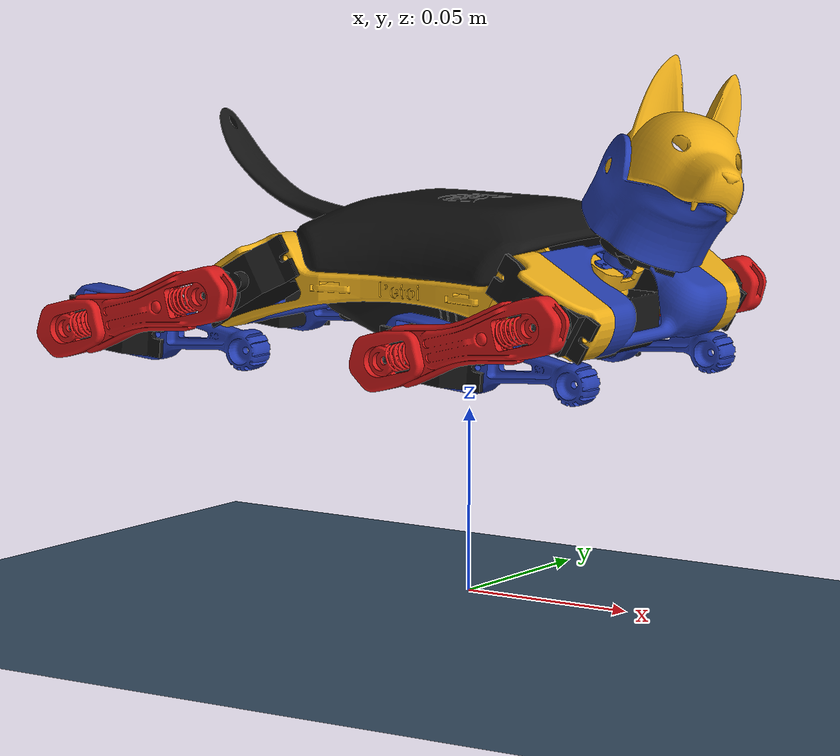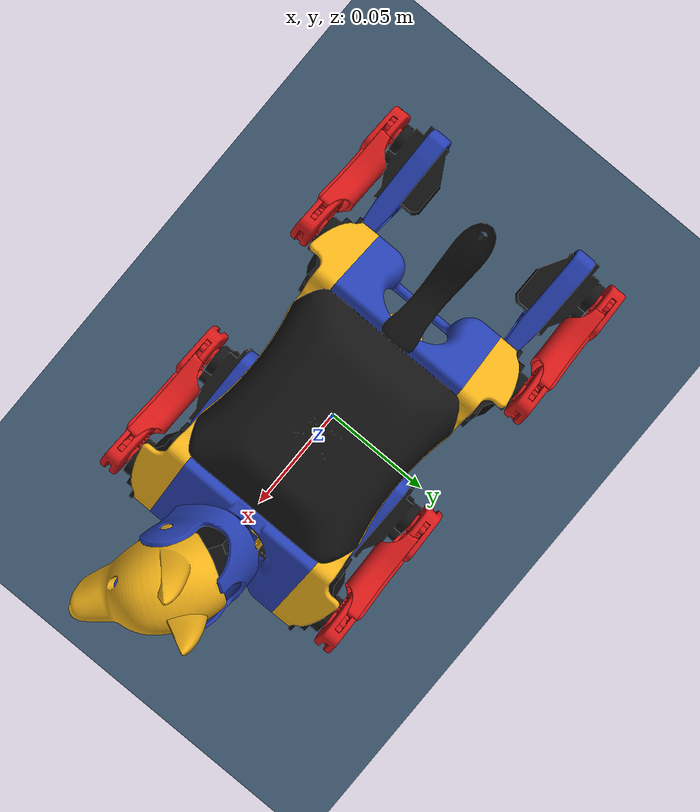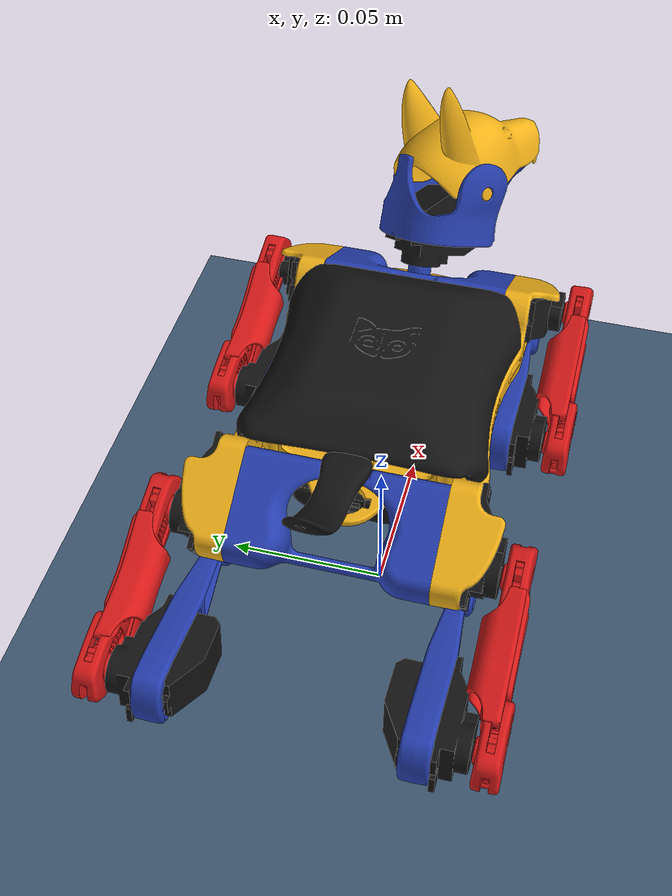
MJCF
<!-- MH-FLOCKE Scene: Petoi Bittle X -->
<mujoco model="bittle_scene">
  <include file="bittle.xml"/>

  <visual>
    <headlight diffuse="0.6 0.6 0.6" ambient="0.3 0.3 0.3" specular="0 0 0"/>
    <rgba haze="0.15 0.25 0.35 1"/>
    <global azimuth="120" elevation="-20"/>
  </visual>

  <statistic center="0 0 0.05" extent="0.3"/>
</mujoco>

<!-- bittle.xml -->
<mujoco model="bittle">
  <compiler angle="radian" meshdir="meshes_obj" autolimits="true" inertiafromgeom="false"/>

  <option timestep="0.002" gravity="0 0 -9.81" integrator="implicitfast" cone="elliptic"/>

  <default>
    <joint limited="true" damping="1.5" armature="0.01" frictionloss="0.15"/>
    <default class="visual">
      <geom contype="0" conaffinity="0" group="0" density="1"/>
    </default>
    <default class="collision">
      <geom condim="3" contype="1" conaffinity="15" friction="0.9 0.02 0.01" group="1" rgba="0.5 0.5 0.5 0.5"/>
    </default>
    <position ctrllimited="true" ctrlrange="-1.57 1.57" kp="40.0"/>
    <mesh scale="0.001 0.001 0.001"/>
  </default>

  <asset>
    <mesh name="base_link" file="base_link.obj"/>
    <mesh name="front__1" file="front__1.obj"/>
    <mesh name="rear__1" file="rear__1.obj"/>
    <mesh name="servo_rfs_1" file="servo_rfs_1.obj"/>
    <mesh name="servo_rrs__1" file="servo_rrs__1.obj"/>
    <mesh name="servo_lfs_1" file="servo_lfs_1.obj"/>
    <mesh name="servo_lrs__1" file="servo_lrs__1.obj"/>
    <mesh name="c_neck__1" file="c_neck__1.obj"/>
    <mesh name="servo_neck__1" file="servo_neck__1.obj"/>
    <mesh name="head__1" file="head__1.obj"/>
    <mesh name="jaw_1" file="jaw_1.obj"/>
    <mesh name="c_thrf__1" file="c_thrf__1.obj"/>
    <mesh name="th_rf_1" file="th_rf_1.obj"/>
    <mesh name="tho_rf__1" file="tho_rf__1.obj"/>
    <mesh name="tube__1" file="tube__1.obj"/>
    <mesh name="c_thorf_1" file="c_thorf_1.obj"/>
    <mesh name="servos_rf_1" file="servos_rf_1.obj"/>
    <mesh name="shank_rf_1" file="shank_rf_1.obj"/>
    <mesh name="c_thrr_1" file="c_thrr_1.obj"/>
    <mesh name="th_rr_1" file="th_rr_1.obj"/>
    <mesh name="tho_rr_1" file="tho_rr_1.obj"/>
    <mesh name="tube_rr_1" file="tube_rr_1.obj"/>
    <mesh name="c_thorr_1" file="c_thorr_1.obj"/>
    <mesh name="servos_rr_1" file="servos_rr_1.obj"/>
    <mesh name="shank_rr_1" file="shank_rr_1.obj"/>
    <mesh name="c_thlf_1" file="c_thlf_1.obj"/>
    <mesh name="th_lf_1" file="th_lf_1.obj"/>
    <mesh name="tho_lf_1" file="tho_lf_1.obj"/>
    <mesh name="tube_lf_1" file="tube_lf_1.obj"/>
    <mesh name="c_tholf_1" file="c_tholf_1.obj"/>
    <mesh name="servos_lf_1" file="servos_lf_1.obj"/>
    <mesh name="shank_lf_1" file="shank_lf_1.obj"/>
    <mesh name="c_thlr_1" file="c_thlr_1.obj"/>
    <mesh name="th_lr__1" file="th_lr__1.obj"/>
    <mesh name="tho_lr_1" file="tho_lr_1.obj"/>
    <mesh name="tube_lr_1" file="tube_lr_1.obj"/>
    <mesh name="c_tholr__1" file="c_tholr__1.obj"/>
    <mesh name="servos_lr_1" file="servos_lr_1.obj"/>
    <mesh name="shank_lr_1" file="shank_lr_1.obj"/>
    <mesh name="cover_1" file="cover_1.obj"/>
    <mesh name="battery_1" file="battery_1.obj"/>

    <!-- Materials: Yellow frame, Blue thighs+shanks, Red knee connectors, Black servos+cover -->
    <material name="bittle_yellow" rgba="0.95 0.7 0.1 1"/>
    <material name="body_dark" rgba="0.08 0.08 0.08 1"/>
    <material name="head_yellow" rgba="0.95 0.7 0.1 1"/>
    <material name="bittle_blue" rgba="0.15 0.25 0.7 1"/>
    <material name="bittle_red" rgba="0.85 0.1 0.1 1"/>
    <material name="bittle_black" rgba="0.08 0.08 0.08 1"/>
    <material name="foot_red" rgba="0.8 0.15 0.1 1"/>
    <texture name="grid" type="2d" builtin="checker" width="512" height="512"
             rgb1="0.2 0.3 0.4" rgb2="0.3 0.4 0.5"/>
    <material name="grid" texture="grid" texrepeat="8 8" reflectance="0.2"/>
  </asset>

  <worldbody>
    <geom name="floor" type="plane" size="0 0 0.1" pos="0 0 -0.01" material="grid" contype="1" conaffinity="1"/>
    <light pos="0 0 1.5" dir="0 0 -1" diffuse="0.8 0.8 0.8" specular="0.3 0.3 0.3"/>
    <light pos="0.5 0.5 1.0" dir="-0.5 -0.5 -1" diffuse="0.4 0.4 0.4"/>

    <body name="torso" pos="0 0 0.06">
      <freejoint name="root"/>
      <inertial pos="0.00065 -0.00002 0.02651" mass="0.077" diaginertia="0.000082 0.000161 0.000200"/>
      <site name="imu_site" pos="0 0 0" size="0.001" rgba="0 0 0 0"/>

      <!-- Torso visuals -->
      <geom type="mesh" mesh="base_link" class="visual" material="bittle_yellow"/>
      <geom type="mesh" mesh="base_link" class="collision"/>
      <body name="front__1" pos="0.061733 -0.028 0.025792">
        <inertial pos="0 0 0" mass="1e-6" diaginertia="1e-9 1e-9 1e-9"/>
        <geom pos="-0.061733 0.028 -0.025792" type="mesh" mesh="front__1" class="visual" material="bittle_blue"/>
        <geom pos="-0.061733 0.028 -0.025792" type="mesh" mesh="front__1" class="collision"/>
      </body>
      <body name="rear__1" pos="-0.061733 0.028 0.025792">
        <inertial pos="0 0 0" mass="1e-6" diaginertia="1e-9 1e-9 1e-9"/>
        <geom pos="0.061733 -0.028 -0.025792" type="mesh" mesh="rear__1" class="visual" material="bittle_blue"/>
        <geom pos="0.061733 -0.028 -0.025792" type="mesh" mesh="rear__1" class="collision"/>
      </body>
      <body name="cover_1" pos="0 -0.031 0.030939">
        <inertial pos="0 0 0" mass="1e-6" diaginertia="1e-9 1e-9 1e-9"/>
        <geom pos="0 0.031 -0.030939" type="mesh" mesh="cover_1" class="visual" material="body_dark"/>
        <geom pos="0 0.031 -0.030939" type="mesh" mesh="cover_1" class="collision"/>
      </body>
      <body name="battery_1" pos="-0.01725 0 0.023892">
        <inertial pos="0 0 -0.047784" mass="0.055" diaginertia="5.2e-6 2.3e-5 2.7e-5"/>
        <geom pos="0.01725 0 -0.023892" type="mesh" mesh="battery_1" class="visual" material="body_dark"/>
        <geom pos="0.01725 0 -0.023892" type="mesh" mesh="battery_1" class="collision"/>
      </body>

      <!-- HEAD with neck joint -->
      <body name="c_neck__1" pos="0.044904 0 0.031351">
        <inertial pos="0 0 0" mass="1e-6" diaginertia="1e-9 1e-9 1e-9"/>
        <geom pos="-0.044904 0 -0.031351" type="mesh" mesh="c_neck__1" class="visual" material="bittle_blue"/>
        <body name="servo_neck__1" pos="0.00265 0 0.00459">
          <joint name="neck_joint" pos="0 0 0" axis="-0.5 0 -0.866025" limited="true" range="-0.5 0.5"/>
          <inertial pos="0.06596 -0.00537 0.05490" mass="0.0187" diaginertia="8.3e-6 1.1e-5 7.7e-6"/>
          <geom pos="-0.047554 0 -0.035941" type="mesh" mesh="servo_neck__1" class="visual" material="bittle_black"/>
          <body name="jaw_1" pos="0.016896 -0.012925 -0.001914">
            <inertial pos="0 0 0" mass="1e-6" diaginertia="1e-9 1e-9 1e-9"/>
            <geom pos="-0.06445 0.012925 -0.034027" type="mesh" mesh="jaw_1" class="visual" material="bittle_blue"/>
            <body name="head__1" pos="-0.008739 -0.00423 0.0263">
              <inertial pos="0 0 0" mass="1e-6" diaginertia="1e-9 1e-9 1e-9"/>
              <geom pos="-0.055711 0.017155 -0.060327" type="mesh" mesh="head__1" class="visual" material="head_yellow"/>
            </body>
          </body>
        </body>
      </body>

      <!-- ========== RIGHT FRONT LEG ========== -->
      <body name="servo_rfs_1" pos="0.059645 -0.036 0.017875">
        <inertial pos="0 0 0" mass="0.0107" diaginertia="9e-7 1.2e-6 6e-7"/>
        <geom pos="-0.059645 0.036 -0.017875" type="mesh" mesh="servo_rfs_1" class="visual" material="bittle_black"/>
        <body name="c_thrf__1" pos="-0.007145 -0.0125 0.004125">
          <joint name="shrfs_joint" pos="0 0 0" axis="0 1 0" range="-1.5708 1.6"/>
          <inertial pos="-0.02 0 -0.01" mass="0.006" diaginertia="0.0000011 0.0000022 0.0000022"/>
          <geom pos="-0.0525 0.0485 -0.022" type="mesh" mesh="c_thrf__1" class="visual" material="bittle_red"/>
          <geom pos="-0.0525 0.0485 -0.022" type="mesh" mesh="c_thrf__1" class="collision"/>
          <body name="th_rf_1" pos="0 -0.0023 0">
            <inertial pos="0 0 0" mass="1e-6" diaginertia="1e-9 1e-9 1e-9"/>
            <geom pos="-0.0525 0.0508 -0.022" type="mesh" mesh="th_rf_1" class="visual" material="bittle_red"/>
            <body name="tho_rf__1" pos="-0.013523 0.000445 -0.003623">
              <inertial pos="0 0 0" mass="1e-6" diaginertia="1e-9 1e-9 1e-9"/>
              <geom pos="-0.038977 0.050355 -0.018377" type="mesh" mesh="tho_rf__1" class="visual" material="bittle_red"/>
              <body name="c_thorf_1" pos="-0.03091 -0.004582 -0.008283">
                <inertial pos="0 0 0" mass="1e-6" diaginertia="1e-9 1e-9 1e-9"/>
                <geom pos="-0.008067 0.054937 -0.010094" type="mesh" mesh="c_thorf_1" class="visual" material="bittle_red"/>
                <body name="servos_rf_1" pos="0 0.007857 0">
                  <joint name="shrft_joint" pos="0 0 0" axis="0 1 0" range="-1.22173 1.5708"/>
                  <inertial pos="-0.004 0.02 -0.005" mass="0.0107" diaginertia="9e-7 1.2e-6 6e-7"/>
                  <geom pos="-0.008067 0.04708 -0.010094" type="mesh" mesh="servos_rf_1" class="visual" material="bittle_black"/>
                  <geom pos="-0.008067 0.04708 -0.010094" type="mesh" mesh="servos_rf_1" class="collision"/>
                  <site name="rf_foot_site" pos="0.01869 0.00000 -0.02242" type="sphere" size="0.001" rgba="0 0 0 0"/>
                  <body name="shank_rf_1" pos="-0.008218 0.0075 0.000719">
                    <inertial pos="0 0 0" mass="0.0033" diaginertia="1.2e-6 1.4e-8 1.2e-6"/>
                    <geom pos="0.000151 0.03958 -0.010813" type="mesh" mesh="shank_rf_1" class="visual" material="bittle_blue"/>
                    <geom pos="0.000151 0.03958 -0.010813" type="mesh" mesh="shank_rf_1" class="collision"/>
                  </body>
                </body>
              </body>
            </body>
            <body name="tube__1" pos="-0.02335 -0.001807 -0.00172">
              <inertial pos="0 0 0" mass="1e-6" diaginertia="1e-9 1e-9 1e-9"/>
              <geom pos="-0.02915 0.052607 -0.02028" type="mesh" mesh="tube__1" class="visual" material="bittle_red"/>
            </body>
          </body>
        </body>
      </body>

      <!-- ========== RIGHT REAR LEG ========== -->
      <body name="servo_rrs__1" pos="-0.059645 -0.036 0.017875">
        <inertial pos="0 0 0" mass="0.0107" diaginertia="9e-7 1.2e-6 6e-7"/>
        <geom pos="0.059645 0.036 -0.017875" type="mesh" mesh="servo_rrs__1" class="visual" material="bittle_black"/>
        <body name="c_thrr_1" pos="0.007145 -0.0125 0.004125">
          <joint name="shrrs_joint" pos="0 0 0" axis="0 -1 0" range="-1.5708 1.6"/>
          <inertial pos="0.02 0 -0.01" mass="0.006" diaginertia="0.0000011 0.0000022 0.0000022"/>
          <geom pos="0.0525 0.0485 -0.022" type="mesh" mesh="c_thrr_1" class="visual" material="bittle_red"/>
          <geom pos="0.0525 0.0485 -0.022" type="mesh" mesh="c_thrr_1" class="collision"/>
          <body name="th_rr_1" pos="0 -0.0023 0">
            <inertial pos="0 0 0" mass="1e-6" diaginertia="1e-9 1e-9 1e-9"/>
            <geom pos="0.0525 0.0508 -0.022" type="mesh" mesh="th_rr_1" class="visual" material="bittle_red"/>
            <body name="tho_rr_1" pos="-0.013523 0.000445 -0.003623">
              <inertial pos="0 0 0" mass="1e-6" diaginertia="1e-9 1e-9 1e-9"/>
              <geom pos="0.066023 0.050355 -0.018377" type="mesh" mesh="tho_rr_1" class="visual" material="bittle_red"/>
              <body name="c_thorr_1" pos="-0.03091 -0.004582 -0.008283">
                <inertial pos="0 0 0" mass="1e-6" diaginertia="1e-9 1e-9 1e-9"/>
                <geom pos="0.096933 0.054937 -0.010094" type="mesh" mesh="c_thorr_1" class="visual" material="bittle_red"/>
                <body name="servos_rr_1" pos="0 0.007857 0">
                  <joint name="shrrt_joint" pos="0 0 0" axis="0 1 0" range="-1.22173 1.5708"/>
                  <inertial pos="0.05 0.02 -0.005" mass="0.0107" diaginertia="9e-7 1.2e-6 6e-7"/>
                  <geom pos="0.096933 0.04708 -0.010094" type="mesh" mesh="servos_rr_1" class="visual" material="bittle_black"/>
                  <geom pos="0.096933 0.04708 -0.010094" type="mesh" mesh="servos_rr_1" class="collision"/>
                  <site name="rr_foot_site" pos="0.01854 0.00000 -0.02223" type="sphere" size="0.001" rgba="0 0 0 0"/>
                  <body name="shank_rr_1" pos="-0.008218 0.0075 0.000719">
                    <inertial pos="0 0 0" mass="0.0033" diaginertia="1.2e-6 1.4e-8 1.2e-6"/>
                    <geom pos="0.105151 0.03958 -0.010813" type="mesh" mesh="shank_rr_1" class="visual" material="bittle_blue"/>
                    <geom pos="0.105151 0.03958 -0.010813" type="mesh" mesh="shank_rr_1" class="collision"/>
                  </body>
                </body>
              </body>
            </body>
            <body name="tube_rr_1" pos="-0.02335 -0.001807 -0.00172">
              <inertial pos="0 0 0" mass="1e-6" diaginertia="1e-9 1e-9 1e-9"/>
              <geom pos="0.07585 0.052607 -0.02028" type="mesh" mesh="tube_rr_1" class="visual" material="bittle_red"/>
            </body>
          </body>
        </body>
      </body>

      <!-- ========== LEFT FRONT LEG ========== -->
      <body name="servo_lfs_1" pos="0.059645 0.036 0.017875">
        <inertial pos="0 0 0" mass="0.0107" diaginertia="9e-7 1.2e-6 6e-7"/>
        <geom pos="-0.059645 -0.036 -0.017875" type="mesh" mesh="servo_lfs_1" class="visual" material="bittle_black"/>
        <body name="c_thlf_1" pos="-0.007145 0.0125 0.004125">
          <joint name="shlfs_joint" pos="0 0 0" axis="0 1 0" range="-1.5708 1.6"/>
          <inertial pos="-0.02 0 -0.01" mass="0.006" diaginertia="0.0000011 0.0000022 0.0000022"/>
          <geom pos="-0.0525 -0.0485 -0.022" type="mesh" mesh="c_thlf_1" class="visual" material="bittle_red"/>
          <geom pos="-0.0525 -0.0485 -0.022" type="mesh" mesh="c_thlf_1" class="collision"/>
          <body name="th_lf_1" pos="0 0.0023 0">
            <inertial pos="0 0 0" mass="1e-6" diaginertia="1e-9 1e-9 1e-9"/>
            <geom pos="-0.0525 -0.0508 -0.022" type="mesh" mesh="th_lf_1" class="visual" material="bittle_red"/>
            <body name="tho_lf_1" pos="-0.013523 -0.000445 -0.003623">
              <inertial pos="0 0 0" mass="1e-6" diaginertia="1e-9 1e-9 1e-9"/>
              <geom pos="-0.038977 -0.050355 -0.018377" type="mesh" mesh="tho_lf_1" class="visual" material="bittle_red"/>
              <body name="c_tholf_1" pos="-0.03091 0.004582 -0.008283">
                <inertial pos="0 0 0" mass="1e-6" diaginertia="1e-9 1e-9 1e-9"/>
                <geom pos="-0.008067 -0.054937 -0.010094" type="mesh" mesh="c_tholf_1" class="visual" material="bittle_red"/>
                <body name="servos_lf_1" pos="0 -0.007857 0">
                  <joint name="shlft_joint" pos="0 0 0" axis="0 1 0" range="-1.22173 1.5708"/>
                  <inertial pos="-0.004 -0.02 -0.005" mass="0.0107" diaginertia="9e-7 1.2e-6 6e-7"/>
                  <geom pos="-0.008067 -0.04708 -0.010094" type="mesh" mesh="servos_lf_1" class="visual" material="bittle_black"/>
                  <geom pos="-0.008067 -0.04708 -0.010094" type="mesh" mesh="servos_lf_1" class="collision"/>
                  <site name="lf_foot_site" pos="0.01868 0.00000 -0.02241" type="sphere" size="0.001" rgba="0 0 0 0"/>
                  <body name="shank_lf_1" pos="-0.008218 -0.007498 0.000719">
                    <inertial pos="0 0 0" mass="0.0033" diaginertia="1.2e-6 1.4e-8 1.2e-6"/>
                    <geom pos="0.000151 -0.039582 -0.010813" type="mesh" mesh="shank_lf_1" class="visual" material="bittle_blue"/>
                    <geom pos="0.000151 -0.039582 -0.010813" type="mesh" mesh="shank_lf_1" class="collision"/>
                  </body>
                </body>
              </body>
            </body>
            <body name="tube_lf_1" pos="-0.02335 0.001807 -0.00172">
              <inertial pos="0 0 0" mass="1e-6" diaginertia="1e-9 1e-9 1e-9"/>
              <geom pos="-0.02915 -0.052607 -0.02028" type="mesh" mesh="tube_lf_1" class="visual" material="bittle_red"/>
            </body>
          </body>
        </body>
      </body>

      <!-- ========== LEFT REAR LEG ========== -->
      <body name="servo_lrs__1" pos="-0.059645 0.036 0.017875">
        <inertial pos="0 0 0" mass="0.0107" diaginertia="9e-7 1.2e-6 6e-7"/>
        <geom pos="0.059645 -0.036 -0.017875" type="mesh" mesh="servo_lrs__1" class="visual" material="bittle_black"/>
        <body name="c_thlr_1" pos="0.007145 0.0125 0.004125">
          <joint name="shlrs_joint" pos="0 0 0" axis="0 -1 0" range="-1.5708 1.6"/>
          <inertial pos="0.02 0 -0.01" mass="0.006" diaginertia="0.0000011 0.0000022 0.0000022"/>
          <geom pos="0.0525 -0.0485 -0.022" type="mesh" mesh="c_thlr_1" class="visual" material="bittle_red"/>
          <geom pos="0.0525 -0.0485 -0.022" type="mesh" mesh="c_thlr_1" class="collision"/>
          <body name="th_lr__1" pos="0 0.002302 0">
            <inertial pos="0 0 0" mass="1e-6" diaginertia="1e-9 1e-9 1e-9"/>
            <geom pos="0.0525 -0.050802 -0.022" type="mesh" mesh="th_lr__1" class="visual" material="bittle_red"/>
            <body name="tho_lr_1" pos="-0.013523 -0.000445 -0.003623">
              <inertial pos="0 0 0" mass="1e-6" diaginertia="1e-9 1e-9 1e-9"/>
              <geom pos="0.066023 -0.050357 -0.018377" type="mesh" mesh="tho_lr_1" class="visual" material="bittle_red"/>
              <body name="c_tholr__1" pos="-0.03091 0.004582 -0.008283">
                <inertial pos="0 0 0" mass="1e-6" diaginertia="1e-9 1e-9 1e-9"/>
                <geom pos="0.096933 -0.054939 -0.010094" type="mesh" mesh="c_tholr__1" class="visual" material="bittle_red"/>
                <body name="servos_lr_1" pos="0 -0.007857 0">
                  <joint name="shlrt_joint" pos="0 0 0" axis="0 1 0" range="-1.22173 1.5708"/>
                  <inertial pos="0.05 -0.02 -0.005" mass="0.0107" diaginertia="9e-7 1.2e-6 6e-7"/>
                  <geom pos="0.096933 -0.047082 -0.010094" type="mesh" mesh="servos_lr_1" class="visual" material="bittle_black"/>
                  <geom pos="0.096933 -0.047082 -0.010094" type="mesh" mesh="servos_lr_1" class="collision"/>
                  <site name="lr_foot_site" pos="0.01853 0.00000 -0.02222" type="sphere" size="0.001" rgba="0 0 0 0"/>
                  <body name="shank_lr_1" pos="-0.008218 -0.0075 0.000719">
                    <inertial pos="0 0 0" mass="0.0033" diaginertia="1.2e-6 1.4e-8 1.2e-6"/>
                    <geom pos="0.105151 -0.039582 -0.010813" type="mesh" mesh="shank_lr_1" class="visual" material="bittle_blue"/>
                    <geom pos="0.105151 -0.039582 -0.010813" type="mesh" mesh="shank_lr_1" class="collision"/>
                  </body>
                </body>
              </body>
            </body>
            <body name="tube_lr_1" pos="-0.02335 0.001807 -0.00172">
              <inertial pos="0 0 0" mass="1e-6" diaginertia="1e-9 1e-9 1e-9"/>
              <geom pos="0.07585 -0.052609 -0.02028" type="mesh" mesh="tube_lr_1" class="visual" material="bittle_red"/>
            </body>
          </body>
        </body>
      </body>

    </body>
  </worldbody>

  <actuator>
    <position name="rf_shoulder_motor" joint="shrfs_joint"/>
    <position name="rf_knee_motor" joint="shrft_joint"/>
    <position name="lf_shoulder_motor" joint="shlfs_joint"/>
    <position name="lf_knee_motor" joint="shlft_joint"/>
    <position name="rr_shoulder_motor" joint="shrrs_joint"/>
    <position name="rr_knee_motor" joint="shrrt_joint"/>
    <position name="lr_shoulder_motor" joint="shlrs_joint"/>
    <position name="lr_knee_motor" joint="shlrt_joint"/>
  </actuator>

  <sensor>
    <accelerometer name="imu_accel" site="imu_site"/>
    <gyro name="imu_gyro" site="imu_site"/>
    <framequat name="torso_quat" objtype="body" objname="torso"/>
    <framepos name="torso_pos" objtype="body" objname="torso"/>
    <velocimeter name="torso_vel" site="imu_site"/>
    <jointpos name="rf_shoulder_pos" joint="shrfs_joint"/>
    <jointpos name="rf_knee_pos" joint="shrft_joint"/>
    <jointpos name="lf_shoulder_pos" joint="shlfs_joint"/>
    <jointpos name="lf_knee_pos" joint="shlft_joint"/>
    <jointpos name="rr_shoulder_pos" joint="shrrs_joint"/>
    <jointpos name="rr_knee_pos" joint="shrrt_joint"/>
    <jointpos name="lr_shoulder_pos" joint="shlrs_joint"/>
    <jointpos name="lr_knee_pos" joint="shlrt_joint"/>
    <touch name="rf_contact" site="rf_foot_site"/>
    <touch name="lf_contact" site="lf_foot_site"/>
    <touch name="rr_contact" site="rr_foot_site"/>
    <touch name="lr_contact" site="lr_foot_site"/>
  </sensor>

  <!-- qpos joint order: neck, RF_sh, RF_kn, RR_sh, RR_kn, LF_sh, LF_kn, LR_sh, LR_kn -->
  <keyframe>
    <key name="stand" qpos="0 0 0.06  1 0 0 0  -0.48 -0.7854 1.4835  0.7854 1.4835  -0.7854 1.4835  0.7854 1.4835"
                      ctrl="-0.7854 1.4835  -0.7854 1.4835  0.7854 1.4835  0.7854 1.4835"/>
  </keyframe>

</mujoco>
